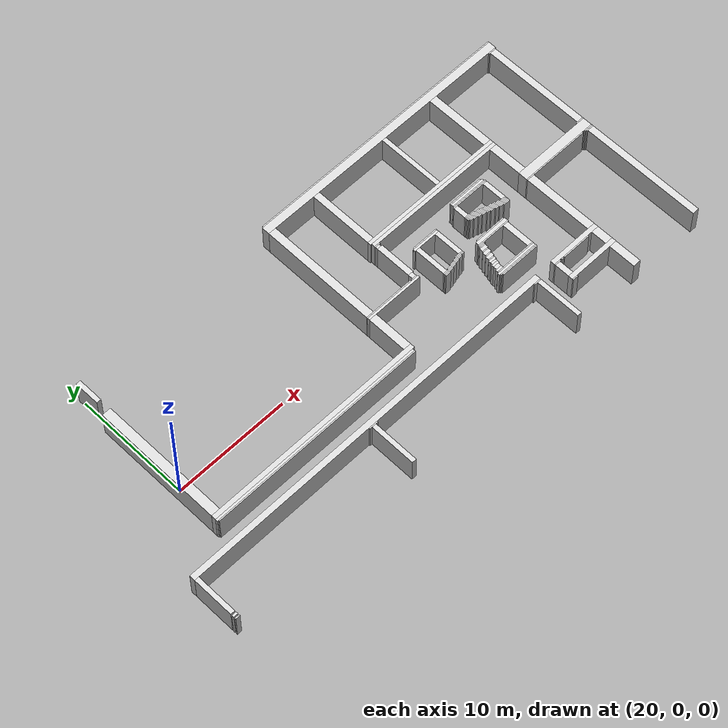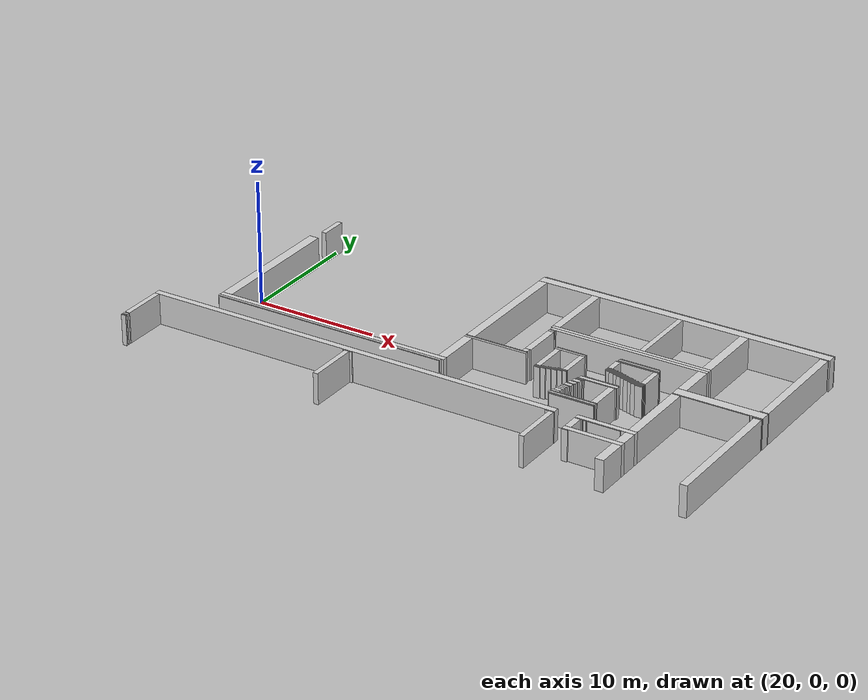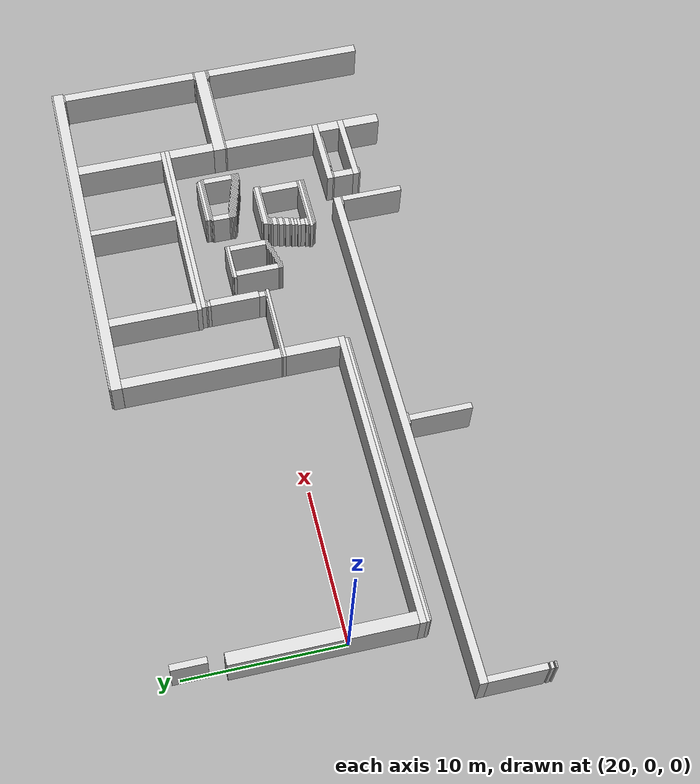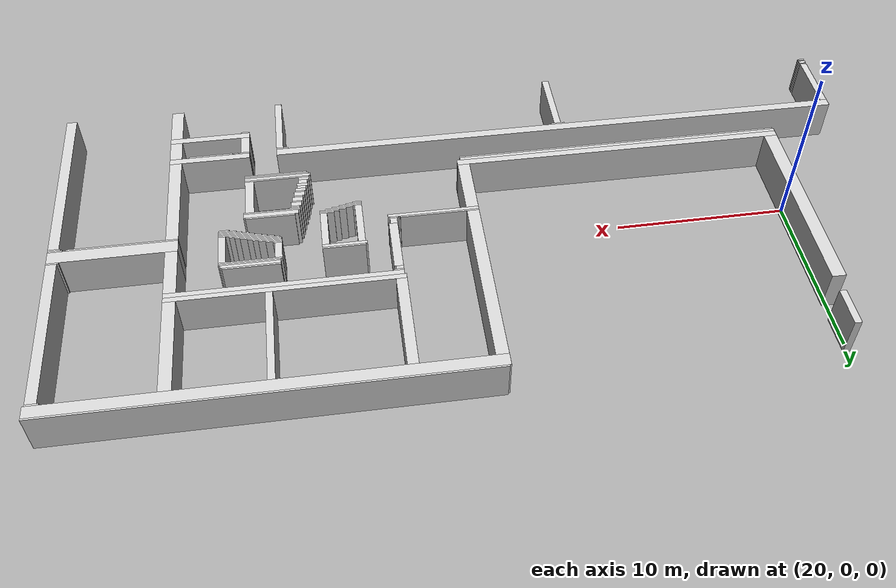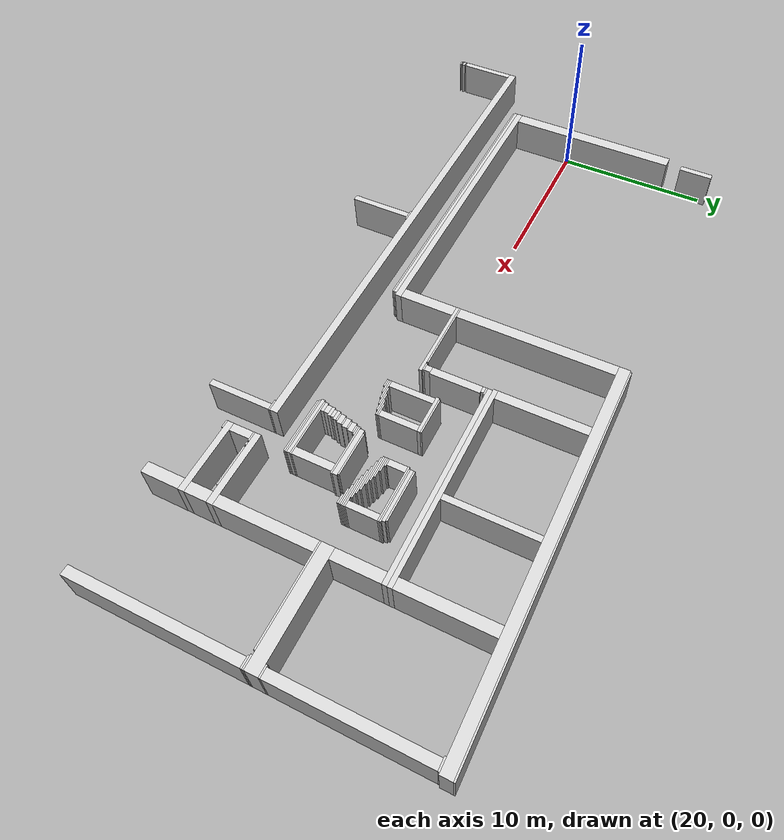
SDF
<sdf version="1.8">
 <model name="campus_first_floor">
  <static>true</static>
  <link name="wall_3">
   <pose>50.45000 10.75000 1.25000 0 0 0</pose>
   <collision name="collision"><geometry><box><size>24.00000 0.10000 2.50000</size></box></geometry></collision>
   <visual name="visual">
    <geometry><box><size>24.00000 0.10000 2.50000</size></box></geometry>
    <material>
     <ambient>0.72 0.72 0.72 1</ambient>
     <diffuse>0.82 0.82 0.82 1</diffuse>
     <specular>0.05 0.05 0.05 1</specular>
    </material>
   </visual>
  </link>
  <link name="wall_8">
   <pose>50.40000 10.35000 1.25000 0 0 0</pose>
   <collision name="collision"><geometry><box><size>24.10000 0.70000 2.50000</size></box></geometry></collision>
   <visual name="visual">
    <geometry><box><size>24.10000 0.70000 2.50000</size></box></geometry>
    <material>
     <ambient>0.72 0.72 0.72 1</ambient>
     <diffuse>0.82 0.82 0.82 1</diffuse>
     <specular>0.05 0.05 0.05 1</specular>
    </material>
   </visual>
  </link>
  <link name="wall_9">
   <pose>62.00000 9.95000 1.25000 0 0 0</pose>
   <collision name="collision"><geometry><box><size>0.70000 0.10000 2.50000</size></box></geometry></collision>
   <visual name="visual">
    <geometry><box><size>0.70000 0.10000 2.50000</size></box></geometry>
    <material>
     <ambient>0.72 0.72 0.72 1</ambient>
     <diffuse>0.82 0.82 0.82 1</diffuse>
     <specular>0.05 0.05 0.05 1</specular>
    </material>
   </visual>
  </link>
  <link name="wall_19">
   <pose>20.05000 9.40000 1.25000 0 0 0</pose>
   <collision name="collision"><geometry><box><size>0.40000 2.20000 2.50000</size></box></geometry></collision>
   <visual name="visual">
    <geometry><box><size>0.40000 2.20000 2.50000</size></box></geometry>
    <material>
     <ambient>0.72 0.72 0.72 1</ambient>
     <diffuse>0.82 0.82 0.82 1</diffuse>
     <specular>0.05 0.05 0.05 1</specular>
    </material>
   </visual>
  </link>
  <link name="wall_59">
   <pose>55.60000 7.15000 1.25000 0 0 0</pose>
   <collision name="collision"><geometry><box><size>0.70000 5.70000 2.50000</size></box></geometry></collision>
   <visual name="visual">
    <geometry><box><size>0.70000 5.70000 2.50000</size></box></geometry>
    <material>
     <ambient>0.72 0.72 0.72 1</ambient>
     <diffuse>0.82 0.82 0.82 1</diffuse>
     <specular>0.05 0.05 0.05 1</specular>
    </material>
   </visual>
  </link>
  <link name="wall_61">
   <pose>50.35000 7.15000 1.25000 0 0 0</pose>
   <collision name="collision"><geometry><box><size>0.40000 5.70000 2.50000</size></box></geometry></collision>
   <visual name="visual">
    <geometry><box><size>0.40000 5.70000 2.50000</size></box></geometry>
    <material>
     <ambient>0.72 0.72 0.72 1</ambient>
     <diffuse>0.82 0.82 0.82 1</diffuse>
     <specular>0.05 0.05 0.05 1</specular>
    </material>
   </visual>
  </link>
  <link name="wall_62">
   <pose>43.25000 7.15000 1.25000 0 0 0</pose>
   <collision name="collision"><geometry><box><size>0.60000 5.70000 2.50000</size></box></geometry></collision>
   <visual name="visual">
    <geometry><box><size>0.60000 5.70000 2.50000</size></box></geometry>
    <material>
     <ambient>0.72 0.72 0.72 1</ambient>
     <diffuse>0.82 0.82 0.82 1</diffuse>
     <specular>0.05 0.05 0.05 1</specular>
    </material>
   </visual>
  </link>
  <link name="wall_69">
   <pose>49.45000 4.15000 1.25000 0 0 0</pose>
   <collision name="collision"><geometry><box><size>13.00000 0.30000 2.50000</size></box></geometry></collision>
   <visual name="visual">
    <geometry><box><size>13.00000 0.30000 2.50000</size></box></geometry>
    <material>
     <ambient>0.72 0.72 0.72 1</ambient>
     <diffuse>0.82 0.82 0.82 1</diffuse>
     <specular>0.05 0.05 0.05 1</specular>
    </material>
   </visual>
  </link>
  <link name="wall_74">
   <pose>49.50000 3.85000 1.25000 0 0 0</pose>
   <collision name="collision"><geometry><box><size>12.90000 0.30000 2.50000</size></box></geometry></collision>
   <visual name="visual">
    <geometry><box><size>12.90000 0.30000 2.50000</size></box></geometry>
    <material>
     <ambient>0.72 0.72 0.72 1</ambient>
     <diffuse>0.82 0.82 0.82 1</diffuse>
     <specular>0.05 0.05 0.05 1</specular>
    </material>
   </visual>
  </link>
  <link name="wall_76">
   <pose>43.30000 3.65000 1.25000 0 0 0</pose>
   <collision name="collision"><geometry><box><size>0.50000 0.10000 2.50000</size></box></geometry></collision>
   <visual name="visual">
    <geometry><box><size>0.50000 0.10000 2.50000</size></box></geometry>
    <material>
     <ambient>0.72 0.72 0.72 1</ambient>
     <diffuse>0.82 0.82 0.82 1</diffuse>
     <specular>0.05 0.05 0.05 1</specular>
    </material>
   </visual>
  </link>
  <link name="wall_79">
   <pose>43.25000 3.50000 1.25000 0 0 0</pose>
   <collision name="collision"><geometry><box><size>0.40000 0.20000 2.50000</size></box></geometry></collision>
   <visual name="visual">
    <geometry><box><size>0.40000 0.20000 2.50000</size></box></geometry>
    <material>
     <ambient>0.72 0.72 0.72 1</ambient>
     <diffuse>0.82 0.82 0.82 1</diffuse>
     <specular>0.05 0.05 0.05 1</specular>
    </material>
   </visual>
  </link>
  <link name="wall_102">
   <pose>51.25000 2.35000 1.25000 0 0 0</pose>
   <collision name="collision"><geometry><box><size>3.20000 0.10000 2.50000</size></box></geometry></collision>
   <visual name="visual">
    <geometry><box><size>3.20000 0.10000 2.50000</size></box></geometry>
    <material>
     <ambient>0.72 0.72 0.72 1</ambient>
     <diffuse>0.82 0.82 0.82 1</diffuse>
     <specular>0.05 0.05 0.05 1</specular>
    </material>
   </visual>
  </link>
  <link name="wall_103">
   <pose>51.30000 2.20000 1.25000 0 0 0</pose>
   <collision name="collision"><geometry><box><size>3.30000 0.20000 2.50000</size></box></geometry></collision>
   <visual name="visual">
    <geometry><box><size>3.30000 0.20000 2.50000</size></box></geometry>
    <material>
     <ambient>0.72 0.72 0.72 1</ambient>
     <diffuse>0.82 0.82 0.82 1</diffuse>
     <specular>0.05 0.05 0.05 1</specular>
    </material>
   </visual>
  </link>
  <link name="wall_108">
   <pose>51.35000 2.05000 1.25000 0 0 0</pose>
   <collision name="collision"><geometry><box><size>3.40000 0.10000 2.50000</size></box></geometry></collision>
   <visual name="visual">
    <geometry><box><size>3.40000 0.10000 2.50000</size></box></geometry>
    <material>
     <ambient>0.72 0.72 0.72 1</ambient>
     <diffuse>0.82 0.82 0.82 1</diffuse>
     <specular>0.05 0.05 0.05 1</specular>
    </material>
   </visual>
  </link>
  <link name="wall_113">
   <pose>51.30000 1.95000 1.25000 0 0 0</pose>
   <collision name="collision"><geometry><box><size>3.50000 0.10000 2.50000</size></box></geometry></collision>
   <visual name="visual">
    <geometry><box><size>3.50000 0.10000 2.50000</size></box></geometry>
    <material>
     <ambient>0.72 0.72 0.72 1</ambient>
     <diffuse>0.82 0.82 0.82 1</diffuse>
     <specular>0.05 0.05 0.05 1</specular>
    </material>
   </visual>
  </link>
  <link name="wall_123">
   <pose>46.15000 1.55000 1.25000 0 0 0</pose>
   <collision name="collision"><geometry><box><size>2.40000 0.10000 2.50000</size></box></geometry></collision>
   <visual name="visual">
    <geometry><box><size>2.40000 0.10000 2.50000</size></box></geometry>
    <material>
     <ambient>0.72 0.72 0.72 1</ambient>
     <diffuse>0.82 0.82 0.82 1</diffuse>
     <specular>0.05 0.05 0.05 1</specular>
    </material>
   </visual>
  </link>
  <link name="wall_128">
   <pose>46.10000 1.40000 1.25000 0 0 0</pose>
   <collision name="collision"><geometry><box><size>2.50000 0.20000 2.50000</size></box></geometry></collision>
   <visual name="visual">
    <geometry><box><size>2.50000 0.20000 2.50000</size></box></geometry>
    <material>
     <ambient>0.72 0.72 0.72 1</ambient>
     <diffuse>0.82 0.82 0.82 1</diffuse>
     <specular>0.05 0.05 0.05 1</specular>
    </material>
   </visual>
  </link>
  <link name="wall_133">
   <pose>62.05000 5.35000 1.25000 0 0 0</pose>
   <collision name="collision"><geometry><box><size>0.60000 9.10000 2.50000</size></box></geometry></collision>
   <visual name="visual">
    <geometry><box><size>0.60000 9.10000 2.50000</size></box></geometry>
    <material>
     <ambient>0.72 0.72 0.72 1</ambient>
     <diffuse>0.82 0.82 0.82 1</diffuse>
     <specular>0.05 0.05 0.05 1</specular>
    </material>
   </visual>
  </link>
  <link name="wall_134">
   <pose>49.75000 1.35000 1.25000 0 0 0</pose>
   <collision name="collision"><geometry><box><size>0.40000 1.10000 2.50000</size></box></geometry></collision>
   <visual name="visual">
    <geometry><box><size>0.40000 1.10000 2.50000</size></box></geometry>
    <material>
     <ambient>0.72 0.72 0.72 1</ambient>
     <diffuse>0.82 0.82 0.82 1</diffuse>
     <specular>0.05 0.05 0.05 1</specular>
    </material>
   </visual>
  </link>
  <link name="wall_135">
   <pose>55.60000 2.20000 1.25000 0 0 0</pose>
   <collision name="collision"><geometry><box><size>0.70000 3.00000 2.50000</size></box></geometry></collision>
   <visual name="visual">
    <geometry><box><size>0.70000 3.00000 2.50000</size></box></geometry>
    <material>
     <ambient>0.72 0.72 0.72 1</ambient>
     <diffuse>0.82 0.82 0.82 1</diffuse>
     <specular>0.05 0.05 0.05 1</specular>
    </material>
   </visual>
  </link>
  <link name="wall_136">
   <pose>62.00000 0.75000 1.25000 0 0 0</pose>
   <collision name="collision"><geometry><box><size>0.70000 0.10000 2.50000</size></box></geometry></collision>
   <visual name="visual">
    <geometry><box><size>0.70000 0.10000 2.50000</size></box></geometry>
    <material>
     <ambient>0.72 0.72 0.72 1</ambient>
     <diffuse>0.82 0.82 0.82 1</diffuse>
     <specular>0.05 0.05 0.05 1</specular>
    </material>
   </visual>
  </link>
  <link name="wall_137">
   <pose>49.80000 0.75000 1.25000 0 0 0</pose>
   <collision name="collision"><geometry><box><size>0.50000 0.10000 2.50000</size></box></geometry></collision>
   <visual name="visual">
    <geometry><box><size>0.50000 0.10000 2.50000</size></box></geometry>
    <material>
     <ambient>0.72 0.72 0.72 1</ambient>
     <diffuse>0.82 0.82 0.82 1</diffuse>
     <specular>0.05 0.05 0.05 1</specular>
    </material>
   </visual>
  </link>
  <link name="wall_138">
   <pose>50.00000 0.65000 1.25000 0 0 0</pose>
   <collision name="collision"><geometry><box><size>0.90000 0.10000 2.50000</size></box></geometry></collision>
   <visual name="visual">
    <geometry><box><size>0.90000 0.10000 2.50000</size></box></geometry>
    <material>
     <ambient>0.72 0.72 0.72 1</ambient>
     <diffuse>0.82 0.82 0.82 1</diffuse>
     <specular>0.05 0.05 0.05 1</specular>
    </material>
   </visual>
  </link>
  <link name="wall_139">
   <pose>50.20000 0.55000 1.25000 0 0 0</pose>
   <collision name="collision"><geometry><box><size>1.30000 0.10000 2.50000</size></box></geometry></collision>
   <visual name="visual">
    <geometry><box><size>1.30000 0.10000 2.50000</size></box></geometry>
    <material>
     <ambient>0.72 0.72 0.72 1</ambient>
     <diffuse>0.82 0.82 0.82 1</diffuse>
     <specular>0.05 0.05 0.05 1</specular>
    </material>
   </visual>
  </link>
  <link name="wall_140">
   <pose>50.35000 0.45000 1.25000 0 0 0</pose>
   <collision name="collision"><geometry><box><size>1.60000 0.10000 2.50000</size></box></geometry></collision>
   <visual name="visual">
    <geometry><box><size>1.60000 0.10000 2.50000</size></box></geometry>
    <material>
     <ambient>0.72 0.72 0.72 1</ambient>
     <diffuse>0.82 0.82 0.82 1</diffuse>
     <specular>0.05 0.05 0.05 1</specular>
    </material>
   </visual>
  </link>
  <link name="wall_141">
   <pose>50.55000 0.35000 1.25000 0 0 0</pose>
   <collision name="collision"><geometry><box><size>1.80000 0.10000 2.50000</size></box></geometry></collision>
   <visual name="visual">
    <geometry><box><size>1.80000 0.10000 2.50000</size></box></geometry>
    <material>
     <ambient>0.72 0.72 0.72 1</ambient>
     <diffuse>0.82 0.82 0.82 1</diffuse>
     <specular>0.05 0.05 0.05 1</specular>
    </material>
   </visual>
  </link>
  <link name="wall_143">
   <pose>43.30000 1.80000 1.25000 0 0 0</pose>
   <collision name="collision"><geometry><box><size>0.50000 3.20000 2.50000</size></box></geometry></collision>
   <visual name="visual">
    <geometry><box><size>0.50000 3.20000 2.50000</size></box></geometry>
    <material>
     <ambient>0.72 0.72 0.72 1</ambient>
     <diffuse>0.82 0.82 0.82 1</diffuse>
     <specular>0.05 0.05 0.05 1</specular>
    </material>
   </visual>
  </link>
  <link name="wall_146">
   <pose>50.90000 0.25000 1.25000 0 0 0</pose>
   <collision name="collision"><geometry><box><size>1.90000 0.10000 2.50000</size></box></geometry></collision>
   <visual name="visual">
    <geometry><box><size>1.90000 0.10000 2.50000</size></box></geometry>
    <material>
     <ambient>0.72 0.72 0.72 1</ambient>
     <diffuse>0.82 0.82 0.82 1</diffuse>
     <specular>0.05 0.05 0.05 1</specular>
    </material>
   </visual>
  </link>
  <link name="wall_148">
   <pose>51.25000 0.15000 1.25000 0 0 0</pose>
   <collision name="collision"><geometry><box><size>1.80000 0.10000 2.50000</size></box></geometry></collision>
   <visual name="visual">
    <geometry><box><size>1.80000 0.10000 2.50000</size></box></geometry>
    <material>
     <ambient>0.72 0.72 0.72 1</ambient>
     <diffuse>0.82 0.82 0.82 1</diffuse>
     <specular>0.05 0.05 0.05 1</specular>
    </material>
   </visual>
  </link>
  <link name="wall_150">
   <pose>51.55000 0.05000 1.25000 0 0 0</pose>
   <collision name="collision"><geometry><box><size>1.80000 0.10000 2.50000</size></box></geometry></collision>
   <visual name="visual">
    <geometry><box><size>1.80000 0.10000 2.50000</size></box></geometry>
    <material>
     <ambient>0.72 0.72 0.72 1</ambient>
     <diffuse>0.82 0.82 0.82 1</diffuse>
     <specular>0.05 0.05 0.05 1</specular>
    </material>
   </visual>
  </link>
  <link name="wall_151">
   <pose>52.85000 0.95000 1.25000 0 0 0</pose>
   <collision name="collision"><geometry><box><size>0.40000 1.90000 2.50000</size></box></geometry></collision>
   <visual name="visual">
    <geometry><box><size>0.40000 1.90000 2.50000</size></box></geometry>
    <material>
     <ambient>0.72 0.72 0.72 1</ambient>
     <diffuse>0.82 0.82 0.82 1</diffuse>
     <specular>0.05 0.05 0.05 1</specular>
    </material>
   </visual>
  </link>
  <link name="wall_155">
   <pose>52.05000 -0.05000 1.25000 0 0 0</pose>
   <collision name="collision"><geometry><box><size>2.00000 0.10000 2.50000</size></box></geometry></collision>
   <visual name="visual">
    <geometry><box><size>2.00000 0.10000 2.50000</size></box></geometry>
    <material>
     <ambient>0.72 0.72 0.72 1</ambient>
     <diffuse>0.82 0.82 0.82 1</diffuse>
     <specular>0.05 0.05 0.05 1</specular>
    </material>
   </visual>
  </link>
  <link name="wall_159">
   <pose>58.80000 0.30000 1.25000 0 0 0</pose>
   <collision name="collision"><geometry><box><size>7.10000 0.80000 2.50000</size></box></geometry></collision>
   <visual name="visual">
    <geometry><box><size>7.10000 0.80000 2.50000</size></box></geometry>
    <material>
     <ambient>0.72 0.72 0.72 1</ambient>
     <diffuse>0.82 0.82 0.82 1</diffuse>
     <specular>0.05 0.05 0.05 1</specular>
    </material>
   </visual>
  </link>
  <link name="wall_163">
   <pose>38.70000 4.90000 1.25000 0 0 0</pose>
   <collision name="collision"><geometry><box><size>0.70000 10.20000 2.50000</size></box></geometry></collision>
   <visual name="visual">
    <geometry><box><size>0.70000 10.20000 2.50000</size></box></geometry>
    <material>
     <ambient>0.72 0.72 0.72 1</ambient>
     <diffuse>0.82 0.82 0.82 1</diffuse>
     <specular>0.05 0.05 0.05 1</specular>
    </material>
   </visual>
  </link>
  <link name="wall_164">
   <pose>43.25000 0.00000 1.25000 0 0 0</pose>
   <collision name="collision"><geometry><box><size>0.40000 0.40000 2.50000</size></box></geometry></collision>
   <visual name="visual">
    <geometry><box><size>0.40000 0.40000 2.50000</size></box></geometry>
    <material>
     <ambient>0.72 0.72 0.72 1</ambient>
     <diffuse>0.82 0.82 0.82 1</diffuse>
     <specular>0.05 0.05 0.05 1</specular>
    </material>
   </visual>
  </link>
  <link name="wall_166">
   <pose>52.20000 -0.15000 1.25000 0 0 0</pose>
   <collision name="collision"><geometry><box><size>1.70000 0.10000 2.50000</size></box></geometry></collision>
   <visual name="visual">
    <geometry><box><size>1.70000 0.10000 2.50000</size></box></geometry>
    <material>
     <ambient>0.72 0.72 0.72 1</ambient>
     <diffuse>0.82 0.82 0.82 1</diffuse>
     <specular>0.05 0.05 0.05 1</specular>
    </material>
   </visual>
  </link>
  <link name="wall_167">
   <pose>61.95000 -0.15000 1.25000 0 0 0</pose>
   <collision name="collision"><geometry><box><size>0.80000 0.10000 2.50000</size></box></geometry></collision>
   <visual name="visual">
    <geometry><box><size>0.80000 0.10000 2.50000</size></box></geometry>
    <material>
     <ambient>0.72 0.72 0.72 1</ambient>
     <diffuse>0.82 0.82 0.82 1</diffuse>
     <specular>0.05 0.05 0.05 1</specular>
    </material>
   </visual>
  </link>
  <link name="wall_170">
   <pose>58.30000 -0.15000 1.25000 0 0 0</pose>
   <collision name="collision"><geometry><box><size>6.10000 0.10000 2.50000</size></box></geometry></collision>
   <visual name="visual">
    <geometry><box><size>6.10000 0.10000 2.50000</size></box></geometry>
    <material>
     <ambient>0.72 0.72 0.72 1</ambient>
     <diffuse>0.82 0.82 0.82 1</diffuse>
     <specular>0.05 0.05 0.05 1</specular>
    </material>
   </visual>
  </link>
  <link name="wall_172">
   <pose>62.00000 -0.25000 1.25000 0 0 0</pose>
   <collision name="collision"><geometry><box><size>0.70000 0.10000 2.50000</size></box></geometry></collision>
   <visual name="visual">
    <geometry><box><size>0.70000 0.10000 2.50000</size></box></geometry>
    <material>
     <ambient>0.72 0.72 0.72 1</ambient>
     <diffuse>0.82 0.82 0.82 1</diffuse>
     <specular>0.05 0.05 0.05 1</specular>
    </material>
   </visual>
  </link>
  <link name="wall_173">
   <pose>40.60000 -0.25000 1.25000 0 0 0</pose>
   <collision name="collision"><geometry><box><size>4.50000 0.10000 2.50000</size></box></geometry></collision>
   <visual name="visual">
    <geometry><box><size>4.50000 0.10000 2.50000</size></box></geometry>
    <material>
     <ambient>0.72 0.72 0.72 1</ambient>
     <diffuse>0.82 0.82 0.82 1</diffuse>
     <specular>0.05 0.05 0.05 1</specular>
    </material>
   </visual>
  </link>
  <link name="wall_174">
   <pose>43.20000 -0.25000 1.25000 0 0 0</pose>
   <collision name="collision"><geometry><box><size>0.50000 0.10000 2.50000</size></box></geometry></collision>
   <visual name="visual">
    <geometry><box><size>0.50000 0.10000 2.50000</size></box></geometry>
    <material>
     <ambient>0.72 0.72 0.72 1</ambient>
     <diffuse>0.82 0.82 0.82 1</diffuse>
     <specular>0.05 0.05 0.05 1</specular>
    </material>
   </visual>
  </link>
  <link name="wall_175">
   <pose>52.40000 -0.25000 1.25000 0 0 0</pose>
   <collision name="collision"><geometry><box><size>1.30000 0.10000 2.50000</size></box></geometry></collision>
   <visual name="visual">
    <geometry><box><size>1.30000 0.10000 2.50000</size></box></geometry>
    <material>
     <ambient>0.72 0.72 0.72 1</ambient>
     <diffuse>0.82 0.82 0.82 1</diffuse>
     <specular>0.05 0.05 0.05 1</specular>
    </material>
   </visual>
  </link>
  <link name="wall_177">
   <pose>52.55000 -0.35000 1.25000 0 0 0</pose>
   <collision name="collision"><geometry><box><size>1.00000 0.10000 2.50000</size></box></geometry></collision>
   <visual name="visual">
    <geometry><box><size>1.00000 0.10000 2.50000</size></box></geometry>
    <material>
     <ambient>0.72 0.72 0.72 1</ambient>
     <diffuse>0.82 0.82 0.82 1</diffuse>
     <specular>0.05 0.05 0.05 1</specular>
    </material>
   </visual>
  </link>
  <link name="wall_186">
   <pose>40.95000 -0.40000 1.25000 0 0 0</pose>
   <collision name="collision"><geometry><box><size>5.20000 0.20000 2.50000</size></box></geometry></collision>
   <visual name="visual">
    <geometry><box><size>5.20000 0.20000 2.50000</size></box></geometry>
    <material>
     <ambient>0.72 0.72 0.72 1</ambient>
     <diffuse>0.82 0.82 0.82 1</diffuse>
     <specular>0.05 0.05 0.05 1</specular>
    </material>
   </visual>
  </link>
  <link name="wall_190">
   <pose>52.75000 -0.45000 1.25000 0 0 0</pose>
   <collision name="collision"><geometry><box><size>0.60000 0.10000 2.50000</size></box></geometry></collision>
   <visual name="visual">
    <geometry><box><size>0.60000 0.10000 2.50000</size></box></geometry>
    <material>
     <ambient>0.72 0.72 0.72 1</ambient>
     <diffuse>0.82 0.82 0.82 1</diffuse>
     <specular>0.05 0.05 0.05 1</specular>
    </material>
   </visual>
  </link>
  <link name="wall_206">
   <pose>47.15000 0.10000 1.25000 0 0 0</pose>
   <collision name="collision"><geometry><box><size>0.40000 2.40000 2.50000</size></box></geometry></collision>
   <visual name="visual">
    <geometry><box><size>0.40000 2.40000 2.50000</size></box></geometry>
    <material>
     <ambient>0.72 0.72 0.72 1</ambient>
     <diffuse>0.82 0.82 0.82 1</diffuse>
     <specular>0.05 0.05 0.05 1</specular>
    </material>
   </visual>
  </link>
  <link name="wall_212">
   <pose>46.95000 -1.15000 1.25000 0 0 0</pose>
   <collision name="collision"><geometry><box><size>0.80000 0.10000 2.50000</size></box></geometry></collision>
   <visual name="visual">
    <geometry><box><size>0.80000 0.10000 2.50000</size></box></geometry>
    <material>
     <ambient>0.72 0.72 0.72 1</ambient>
     <diffuse>0.82 0.82 0.82 1</diffuse>
     <specular>0.05 0.05 0.05 1</specular>
    </material>
   </visual>
  </link>
  <link name="wall_214">
   <pose>50.15000 -1.25000 1.25000 0 0 0</pose>
   <collision name="collision"><geometry><box><size>2.80000 0.10000 2.50000</size></box></geometry></collision>
   <visual name="visual">
    <geometry><box><size>2.80000 0.10000 2.50000</size></box></geometry>
    <material>
     <ambient>0.72 0.72 0.72 1</ambient>
     <diffuse>0.82 0.82 0.82 1</diffuse>
     <specular>0.05 0.05 0.05 1</specular>
    </material>
   </visual>
  </link>
  <link name="wall_215">
   <pose>46.80000 -1.25000 1.25000 0 0 0</pose>
   <collision name="collision"><geometry><box><size>1.10000 0.10000 2.50000</size></box></geometry></collision>
   <visual name="visual">
    <geometry><box><size>1.10000 0.10000 2.50000</size></box></geometry>
    <material>
     <ambient>0.72 0.72 0.72 1</ambient>
     <diffuse>0.82 0.82 0.82 1</diffuse>
     <specular>0.05 0.05 0.05 1</specular>
    </material>
   </visual>
  </link>
  <link name="wall_218">
   <pose>46.45000 -1.35000 1.25000 0 0 0</pose>
   <collision name="collision"><geometry><box><size>1.20000 0.10000 2.50000</size></box></geometry></collision>
   <visual name="visual">
    <geometry><box><size>1.20000 0.10000 2.50000</size></box></geometry>
    <material>
     <ambient>0.72 0.72 0.72 1</ambient>
     <diffuse>0.82 0.82 0.82 1</diffuse>
     <specular>0.05 0.05 0.05 1</specular>
    </material>
   </visual>
  </link>
  <link name="wall_219">
   <pose>45.15000 -0.10000 1.25000 0 0 0</pose>
   <collision name="collision"><geometry><box><size>0.40000 2.80000 2.50000</size></box></geometry></collision>
   <visual name="visual">
    <geometry><box><size>0.40000 2.80000 2.50000</size></box></geometry>
    <material>
     <ambient>0.72 0.72 0.72 1</ambient>
     <diffuse>0.82 0.82 0.82 1</diffuse>
     <specular>0.05 0.05 0.05 1</specular>
    </material>
   </visual>
  </link>
  <link name="wall_220">
   <pose>46.05000 -1.45000 1.25000 0 0 0</pose>
   <collision name="collision"><geometry><box><size>1.20000 0.10000 2.50000</size></box></geometry></collision>
   <visual name="visual">
    <geometry><box><size>1.20000 0.10000 2.50000</size></box></geometry>
    <material>
     <ambient>0.72 0.72 0.72 1</ambient>
     <diffuse>0.82 0.82 0.82 1</diffuse>
     <specular>0.05 0.05 0.05 1</specular>
    </material>
   </visual>
  </link>
  <link name="wall_223">
   <pose>45.60000 -1.55000 1.25000 0 0 0</pose>
   <collision name="collision"><geometry><box><size>1.30000 0.10000 2.50000</size></box></geometry></collision>
   <visual name="visual">
    <geometry><box><size>1.30000 0.10000 2.50000</size></box></geometry>
    <material>
     <ambient>0.72 0.72 0.72 1</ambient>
     <diffuse>0.82 0.82 0.82 1</diffuse>
     <specular>0.05 0.05 0.05 1</specular>
    </material>
   </visual>
  </link>
  <link name="wall_224">
   <pose>50.10000 -1.45000 1.25000 0 0 0</pose>
   <collision name="collision"><geometry><box><size>3.10000 0.30000 2.50000</size></box></geometry></collision>
   <visual name="visual">
    <geometry><box><size>3.10000 0.30000 2.50000</size></box></geometry>
    <material>
     <ambient>0.72 0.72 0.72 1</ambient>
     <diffuse>0.82 0.82 0.82 1</diffuse>
     <specular>0.05 0.05 0.05 1</specular>
    </material>
   </visual>
  </link>
  <link name="wall_227">
   <pose>45.40000 -1.65000 1.25000 0 0 0</pose>
   <collision name="collision"><geometry><box><size>0.90000 0.10000 2.50000</size></box></geometry></collision>
   <visual name="visual">
    <geometry><box><size>0.90000 0.10000 2.50000</size></box></geometry>
    <material>
     <ambient>0.72 0.72 0.72 1</ambient>
     <diffuse>0.82 0.82 0.82 1</diffuse>
     <specular>0.05 0.05 0.05 1</specular>
    </material>
   </visual>
  </link>
  <link name="wall_228">
   <pose>50.05000 -1.65000 1.25000 0 0 0</pose>
   <collision name="collision"><geometry><box><size>3.20000 0.10000 2.50000</size></box></geometry></collision>
   <visual name="visual">
    <geometry><box><size>3.20000 0.10000 2.50000</size></box></geometry>
    <material>
     <ambient>0.72 0.72 0.72 1</ambient>
     <diffuse>0.82 0.82 0.82 1</diffuse>
     <specular>0.05 0.05 0.05 1</specular>
    </material>
   </visual>
  </link>
  <link name="wall_229">
   <pose>45.20000 -1.75000 1.25000 0 0 0</pose>
   <collision name="collision"><geometry><box><size>0.50000 0.10000 2.50000</size></box></geometry></collision>
   <visual name="visual">
    <geometry><box><size>0.50000 0.10000 2.50000</size></box></geometry>
    <material>
     <ambient>0.72 0.72 0.72 1</ambient>
     <diffuse>0.82 0.82 0.82 1</diffuse>
     <specular>0.05 0.05 0.05 1</specular>
    </material>
   </visual>
  </link>
  <link name="wall_231">
   <pose>48.75000 -1.75000 1.25000 0 0 0</pose>
   <collision name="collision"><geometry><box><size>0.60000 0.10000 2.50000</size></box></geometry></collision>
   <visual name="visual">
    <geometry><box><size>0.60000 0.10000 2.50000</size></box></geometry>
    <material>
     <ambient>0.72 0.72 0.72 1</ambient>
     <diffuse>0.82 0.82 0.82 1</diffuse>
     <specular>0.05 0.05 0.05 1</specular>
    </material>
   </visual>
  </link>
  <link name="wall_232">
   <pose>48.70000 -1.85000 1.25000 0 0 0</pose>
   <collision name="collision"><geometry><box><size>0.50000 0.10000 2.50000</size></box></geometry></collision>
   <visual name="visual">
    <geometry><box><size>0.50000 0.10000 2.50000</size></box></geometry>
    <material>
     <ambient>0.72 0.72 0.72 1</ambient>
     <diffuse>0.82 0.82 0.82 1</diffuse>
     <specular>0.05 0.05 0.05 1</specular>
    </material>
   </visual>
  </link>
  <link name="wall_236">
   <pose>48.65000 -2.05000 1.25000 0 0 0</pose>
   <collision name="collision"><geometry><box><size>0.60000 0.30000 2.50000</size></box></geometry></collision>
   <visual name="visual">
    <geometry><box><size>0.60000 0.30000 2.50000</size></box></geometry>
    <material>
     <ambient>0.72 0.72 0.72 1</ambient>
     <diffuse>0.82 0.82 0.82 1</diffuse>
     <specular>0.05 0.05 0.05 1</specular>
    </material>
   </visual>
  </link>
  <link name="wall_237">
   <pose>48.60000 -2.25000 1.25000 0 0 0</pose>
   <collision name="collision"><geometry><box><size>0.50000 0.10000 2.50000</size></box></geometry></collision>
   <visual name="visual">
    <geometry><box><size>0.50000 0.10000 2.50000</size></box></geometry>
    <material>
     <ambient>0.72 0.72 0.72 1</ambient>
     <diffuse>0.82 0.82 0.82 1</diffuse>
     <specular>0.05 0.05 0.05 1</specular>
    </material>
   </visual>
  </link>
  <link name="wall_241">
   <pose>48.55000 -2.45000 1.25000 0 0 0</pose>
   <collision name="collision"><geometry><box><size>0.60000 0.30000 2.50000</size></box></geometry></collision>
   <visual name="visual">
    <geometry><box><size>0.60000 0.30000 2.50000</size></box></geometry>
    <material>
     <ambient>0.72 0.72 0.72 1</ambient>
     <diffuse>0.82 0.82 0.82 1</diffuse>
     <specular>0.05 0.05 0.05 1</specular>
    </material>
   </visual>
  </link>
  <link name="wall_243">
   <pose>48.50000 -2.65000 1.25000 0 0 0</pose>
   <collision name="collision"><geometry><box><size>0.50000 0.10000 2.50000</size></box></geometry></collision>
   <visual name="visual">
    <geometry><box><size>0.50000 0.10000 2.50000</size></box></geometry>
    <material>
     <ambient>0.72 0.72 0.72 1</ambient>
     <diffuse>0.82 0.82 0.82 1</diffuse>
     <specular>0.05 0.05 0.05 1</specular>
    </material>
   </visual>
  </link>
  <link name="wall_251">
   <pose>48.45000 -2.85000 1.25000 0 0 0</pose>
   <collision name="collision"><geometry><box><size>0.60000 0.30000 2.50000</size></box></geometry></collision>
   <visual name="visual">
    <geometry><box><size>0.60000 0.30000 2.50000</size></box></geometry>
    <material>
     <ambient>0.72 0.72 0.72 1</ambient>
     <diffuse>0.82 0.82 0.82 1</diffuse>
     <specular>0.05 0.05 0.05 1</specular>
    </material>
   </visual>
  </link>
  <link name="wall_254">
   <pose>48.40000 -3.05000 1.25000 0 0 0</pose>
   <collision name="collision"><geometry><box><size>0.50000 0.10000 2.50000</size></box></geometry></collision>
   <visual name="visual">
    <geometry><box><size>0.50000 0.10000 2.50000</size></box></geometry>
    <material>
     <ambient>0.72 0.72 0.72 1</ambient>
     <diffuse>0.82 0.82 0.82 1</diffuse>
     <specular>0.05 0.05 0.05 1</specular>
    </material>
   </visual>
  </link>
  <link name="wall_261">
   <pose>48.35000 -3.20000 1.25000 0 0 0</pose>
   <collision name="collision"><geometry><box><size>0.60000 0.20000 2.50000</size></box></geometry></collision>
   <visual name="visual">
    <geometry><box><size>0.60000 0.20000 2.50000</size></box></geometry>
    <material>
     <ambient>0.72 0.72 0.72 1</ambient>
     <diffuse>0.82 0.82 0.82 1</diffuse>
     <specular>0.05 0.05 0.05 1</specular>
    </material>
   </visual>
  </link>
  <link name="wall_264">
   <pose>48.30000 -3.40000 1.25000 0 0 0</pose>
   <collision name="collision"><geometry><box><size>0.50000 0.20000 2.50000</size></box></geometry></collision>
   <visual name="visual">
    <geometry><box><size>0.50000 0.20000 2.50000</size></box></geometry>
    <material>
     <ambient>0.72 0.72 0.72 1</ambient>
     <diffuse>0.82 0.82 0.82 1</diffuse>
     <specular>0.05 0.05 0.05 1</specular>
    </material>
   </visual>
  </link>
  <link name="wall_266">
   <pose>48.25000 -3.60000 1.25000 0 0 0</pose>
   <collision name="collision"><geometry><box><size>0.60000 0.20000 2.50000</size></box></geometry></collision>
   <visual name="visual">
    <geometry><box><size>0.60000 0.20000 2.50000</size></box></geometry>
    <material>
     <ambient>0.72 0.72 0.72 1</ambient>
     <diffuse>0.82 0.82 0.82 1</diffuse>
     <specular>0.05 0.05 0.05 1</specular>
    </material>
   </visual>
  </link>
  <link name="wall_268">
   <pose>38.70000 -2.25000 1.25000 0 0 0</pose>
   <collision name="collision"><geometry><box><size>0.70000 3.50000 2.50000</size></box></geometry></collision>
   <visual name="visual">
    <geometry><box><size>0.70000 3.50000 2.50000</size></box></geometry>
    <material>
     <ambient>0.72 0.72 0.72 1</ambient>
     <diffuse>0.82 0.82 0.82 1</diffuse>
     <specular>0.05 0.05 0.05 1</specular>
    </material>
   </visual>
  </link>
  <link name="wall_270">
   <pose>19.85000 1.65000 1.25000 0 0 0</pose>
   <collision name="collision"><geometry><box><size>0.80000 11.30000 2.50000</size></box></geometry></collision>
   <visual name="visual">
    <geometry><box><size>0.80000 11.30000 2.50000</size></box></geometry>
    <material>
     <ambient>0.72 0.72 0.72 1</ambient>
     <diffuse>0.82 0.82 0.82 1</diffuse>
     <specular>0.05 0.05 0.05 1</specular>
    </material>
   </visual>
  </link>
  <link name="wall_274">
   <pose>48.20000 -3.85000 1.25000 0 0 0</pose>
   <collision name="collision"><geometry><box><size>0.50000 0.30000 2.50000</size></box></geometry></collision>
   <visual name="visual">
    <geometry><box><size>0.50000 0.30000 2.50000</size></box></geometry>
    <material>
     <ambient>0.72 0.72 0.72 1</ambient>
     <diffuse>0.82 0.82 0.82 1</diffuse>
     <specular>0.05 0.05 0.05 1</specular>
    </material>
   </visual>
  </link>
  <link name="wall_283">
   <pose>48.15000 -4.10000 1.25000 0 0 0</pose>
   <collision name="collision"><geometry><box><size>0.60000 0.20000 2.50000</size></box></geometry></collision>
   <visual name="visual">
    <geometry><box><size>0.60000 0.20000 2.50000</size></box></geometry>
    <material>
     <ambient>0.72 0.72 0.72 1</ambient>
     <diffuse>0.82 0.82 0.82 1</diffuse>
     <specular>0.05 0.05 0.05 1</specular>
    </material>
   </visual>
  </link>
  <link name="wall_286">
   <pose>51.30000 -2.95000 1.25000 0 0 0</pose>
   <collision name="collision"><geometry><box><size>0.50000 2.50000 2.50000</size></box></geometry></collision>
   <visual name="visual">
    <geometry><box><size>0.50000 2.50000 2.50000</size></box></geometry>
    <material>
     <ambient>0.72 0.72 0.72 1</ambient>
     <diffuse>0.82 0.82 0.82 1</diffuse>
     <specular>0.05 0.05 0.05 1</specular>
    </material>
   </visual>
  </link>
  <link name="wall_287">
   <pose>49.70000 -4.25000 1.25000 0 0 0</pose>
   <collision name="collision"><geometry><box><size>3.70000 0.10000 2.50000</size></box></geometry></collision>
   <visual name="visual">
    <geometry><box><size>3.70000 0.10000 2.50000</size></box></geometry>
    <material>
     <ambient>0.72 0.72 0.72 1</ambient>
     <diffuse>0.82 0.82 0.82 1</diffuse>
     <specular>0.05 0.05 0.05 1</specular>
    </material>
   </visual>
  </link>
  <link name="wall_296">
   <pose>29.25000 -4.20000 1.25000 0 0 0</pose>
   <collision name="collision"><geometry><box><size>19.60000 0.40000 2.50000</size></box></geometry></collision>
   <visual name="visual">
    <geometry><box><size>19.60000 0.40000 2.50000</size></box></geometry>
    <material>
     <ambient>0.72 0.72 0.72 1</ambient>
     <diffuse>0.82 0.82 0.82 1</diffuse>
     <specular>0.05 0.05 0.05 1</specular>
    </material>
   </visual>
  </link>
  <link name="wall_301">
   <pose>49.65000 -4.40000 1.25000 0 0 0</pose>
   <collision name="collision"><geometry><box><size>3.80000 0.20000 2.50000</size></box></geometry></collision>
   <visual name="visual">
    <geometry><box><size>3.80000 0.20000 2.50000</size></box></geometry>
    <material>
     <ambient>0.72 0.72 0.72 1</ambient>
     <diffuse>0.82 0.82 0.82 1</diffuse>
     <specular>0.05 0.05 0.05 1</specular>
    </material>
   </visual>
  </link>
  <link name="wall_303">
   <pose>29.15000 -4.50000 1.25000 0 0 0</pose>
   <collision name="collision"><geometry><box><size>19.40000 0.20000 2.50000</size></box></geometry></collision>
   <visual name="visual">
    <geometry><box><size>19.40000 0.20000 2.50000</size></box></geometry>
    <material>
     <ambient>0.72 0.72 0.72 1</ambient>
     <diffuse>0.82 0.82 0.82 1</diffuse>
     <specular>0.05 0.05 0.05 1</specular>
    </material>
   </visual>
  </link>
  <link name="wall_304">
   <pose>49.70000 -4.55000 1.25000 0 0 0</pose>
   <collision name="collision"><geometry><box><size>3.70000 0.10000 2.50000</size></box></geometry></collision>
   <visual name="visual">
    <geometry><box><size>3.70000 0.10000 2.50000</size></box></geometry>
    <material>
     <ambient>0.72 0.72 0.72 1</ambient>
     <diffuse>0.82 0.82 0.82 1</diffuse>
     <specular>0.05 0.05 0.05 1</specular>
    </material>
   </visual>
  </link>
  <link name="wall_307">
   <pose>49.75000 -4.65000 1.25000 0 0 0</pose>
   <collision name="collision"><geometry><box><size>3.60000 0.10000 2.50000</size></box></geometry></collision>
   <visual name="visual">
    <geometry><box><size>3.60000 0.10000 2.50000</size></box></geometry>
    <material>
     <ambient>0.72 0.72 0.72 1</ambient>
     <diffuse>0.82 0.82 0.82 1</diffuse>
     <specular>0.05 0.05 0.05 1</specular>
    </material>
   </visual>
  </link>
  <link name="wall_309">
   <pose>29.20000 -4.65000 1.25000 0 0 0</pose>
   <collision name="collision"><geometry><box><size>19.30000 0.10000 2.50000</size></box></geometry></collision>
   <visual name="visual">
    <geometry><box><size>19.30000 0.10000 2.50000</size></box></geometry>
    <material>
     <ambient>0.72 0.72 0.72 1</ambient>
     <diffuse>0.82 0.82 0.82 1</diffuse>
     <specular>0.05 0.05 0.05 1</specular>
    </material>
   </visual>
  </link>
  <link name="wall_319">
   <pose>55.60000 -3.25000 1.25000 0 0 0</pose>
   <collision name="collision"><geometry><box><size>0.70000 6.10000 2.50000</size></box></geometry></collision>
   <visual name="visual">
    <geometry><box><size>0.70000 6.10000 2.50000</size></box></geometry>
    <material>
     <ambient>0.72 0.72 0.72 1</ambient>
     <diffuse>0.82 0.82 0.82 1</diffuse>
     <specular>0.05 0.05 0.05 1</specular>
    </material>
   </visual>
  </link>
  <link name="wall_329">
   <pose>53.60000 -6.50000 1.25000 0 0 0</pose>
   <collision name="collision"><geometry><box><size>4.70000 0.40000 2.50000</size></box></geometry></collision>
   <visual name="visual">
    <geometry><box><size>4.70000 0.40000 2.50000</size></box></geometry>
    <material>
     <ambient>0.72 0.72 0.72 1</ambient>
     <diffuse>0.82 0.82 0.82 1</diffuse>
     <specular>0.05 0.05 0.05 1</specular>
    </material>
   </visual>
  </link>
  <link name="wall_331">
   <pose>32.45000 -6.55000 1.25000 0 0 0</pose>
   <collision name="collision"><geometry><box><size>34.40000 0.50000 2.50000</size></box></geometry></collision>
   <visual name="visual">
    <geometry><box><size>34.40000 0.50000 2.50000</size></box></geometry>
    <material>
     <ambient>0.72 0.72 0.72 1</ambient>
     <diffuse>0.82 0.82 0.82 1</diffuse>
     <specular>0.05 0.05 0.05 1</specular>
    </material>
   </visual>
  </link>
  <link name="wall_333">
   <pose>52.05000 -6.75000 1.25000 0 0 0</pose>
   <collision name="collision"><geometry><box><size>0.20000 0.10000 2.50000</size></box></geometry></collision>
   <visual name="visual">
    <geometry><box><size>0.20000 0.10000 2.50000</size></box></geometry>
    <material>
     <ambient>0.72 0.72 0.72 1</ambient>
     <diffuse>0.82 0.82 0.82 1</diffuse>
     <specular>0.05 0.05 0.05 1</specular>
    </material>
   </visual>
  </link>
  <link name="wall_337">
   <pose>51.55000 -6.75000 1.25000 0 0 0</pose>
   <collision name="collision"><geometry><box><size>0.60000 0.10000 2.50000</size></box></geometry></collision>
   <visual name="visual">
    <geometry><box><size>0.60000 0.10000 2.50000</size></box></geometry>
    <material>
     <ambient>0.72 0.72 0.72 1</ambient>
     <diffuse>0.82 0.82 0.82 1</diffuse>
     <specular>0.05 0.05 0.05 1</specular>
    </material>
   </visual>
  </link>
  <link name="wall_338">
   <pose>53.55000 -6.75000 1.25000 0 0 0</pose>
   <collision name="collision"><geometry><box><size>2.60000 0.10000 2.50000</size></box></geometry></collision>
   <visual name="visual">
    <geometry><box><size>2.60000 0.10000 2.50000</size></box></geometry>
    <material>
     <ambient>0.72 0.72 0.72 1</ambient>
     <diffuse>0.82 0.82 0.82 1</diffuse>
     <specular>0.05 0.05 0.05 1</specular>
    </material>
   </visual>
  </link>
  <link name="wall_341">
   <pose>32.45000 -6.85000 1.25000 0 0 0</pose>
   <collision name="collision"><geometry><box><size>0.80000 0.10000 2.50000</size></box></geometry></collision>
   <visual name="visual">
    <geometry><box><size>0.80000 0.10000 2.50000</size></box></geometry>
    <material>
     <ambient>0.72 0.72 0.72 1</ambient>
     <diffuse>0.82 0.82 0.82 1</diffuse>
     <specular>0.05 0.05 0.05 1</specular>
    </material>
   </visual>
  </link>
  <link name="wall_342">
   <pose>49.30000 -6.85000 1.25000 0 0 0</pose>
   <collision name="collision"><geometry><box><size>0.70000 0.10000 2.50000</size></box></geometry></collision>
   <visual name="visual">
    <geometry><box><size>0.70000 0.10000 2.50000</size></box></geometry>
    <material>
     <ambient>0.72 0.72 0.72 1</ambient>
     <diffuse>0.82 0.82 0.82 1</diffuse>
     <specular>0.05 0.05 0.05 1</specular>
    </material>
   </visual>
  </link>
  <link name="wall_351">
   <pose>55.60000 -7.40000 1.25000 0 0 0</pose>
   <collision name="collision"><geometry><box><size>0.70000 1.40000 2.50000</size></box></geometry></collision>
   <visual name="visual">
    <geometry><box><size>0.70000 1.40000 2.50000</size></box></geometry>
    <material>
     <ambient>0.72 0.72 0.72 1</ambient>
     <diffuse>0.82 0.82 0.82 1</diffuse>
     <specular>0.05 0.05 0.05 1</specular>
    </material>
   </visual>
  </link>
  <link name="wall_352">
   <pose>51.50000 -7.45000 1.25000 0 0 0</pose>
   <collision name="collision"><geometry><box><size>0.50000 1.30000 2.50000</size></box></geometry></collision>
   <visual name="visual">
    <geometry><box><size>0.50000 1.30000 2.50000</size></box></geometry>
    <material>
     <ambient>0.72 0.72 0.72 1</ambient>
     <diffuse>0.82 0.82 0.82 1</diffuse>
     <specular>0.05 0.05 0.05 1</specular>
    </material>
   </visual>
  </link>
  <link name="wall_354">
   <pose>53.60000 -8.30000 1.25000 0 0 0</pose>
   <collision name="collision"><geometry><box><size>4.70000 0.40000 2.50000</size></box></geometry></collision>
   <visual name="visual">
    <geometry><box><size>4.70000 0.40000 2.50000</size></box></geometry>
    <material>
     <ambient>0.72 0.72 0.72 1</ambient>
     <diffuse>0.82 0.82 0.82 1</diffuse>
     <specular>0.05 0.05 0.05 1</specular>
    </material>
   </visual>
  </link>
  <link name="wall_356">
   <pose>51.50000 -8.55000 1.25000 0 0 0</pose>
   <collision name="collision"><geometry><box><size>0.50000 0.10000 2.50000</size></box></geometry></collision>
   <visual name="visual">
    <geometry><box><size>0.50000 0.10000 2.50000</size></box></geometry>
    <material>
     <ambient>0.72 0.72 0.72 1</ambient>
     <diffuse>0.82 0.82 0.82 1</diffuse>
     <specular>0.05 0.05 0.05 1</specular>
    </material>
   </visual>
  </link>
  <link name="wall_365">
   <pose>15.45000 -8.60000 1.25000 0 0 0</pose>
   <collision name="collision"><geometry><box><size>0.40000 3.60000 2.50000</size></box></geometry></collision>
   <visual name="visual">
    <geometry><box><size>0.40000 3.60000 2.50000</size></box></geometry>
    <material>
     <ambient>0.72 0.72 0.72 1</ambient>
     <diffuse>0.82 0.82 0.82 1</diffuse>
     <specular>0.05 0.05 0.05 1</specular>
    </material>
   </visual>
  </link>
  <link name="wall_373">
   <pose>15.45000 -10.60000 1.25000 0 0 0</pose>
   <collision name="collision"><geometry><box><size>0.40000 0.20000 2.50000</size></box></geometry></collision>
   <visual name="visual">
    <geometry><box><size>0.40000 0.20000 2.50000</size></box></geometry>
    <material>
     <ambient>0.72 0.72 0.72 1</ambient>
     <diffuse>0.82 0.82 0.82 1</diffuse>
     <specular>0.05 0.05 0.05 1</specular>
    </material>
   </visual>
  </link>
  <link name="wall_375">
   <pose>32.45000 -8.90000 1.25000 0 0 0</pose>
   <collision name="collision"><geometry><box><size>0.40000 4.00000 2.50000</size></box></geometry></collision>
   <visual name="visual">
    <geometry><box><size>0.40000 4.00000 2.50000</size></box></geometry>
    <material>
     <ambient>0.72 0.72 0.72 1</ambient>
     <diffuse>0.82 0.82 0.82 1</diffuse>
     <specular>0.05 0.05 0.05 1</specular>
    </material>
   </visual>
  </link>
  <link name="wall_379">
   <pose>62.05000 -5.60000 1.25000 0 0 0</pose>
   <collision name="collision"><geometry><box><size>0.60000 10.60000 2.50000</size></box></geometry></collision>
   <visual name="visual">
    <geometry><box><size>0.60000 10.60000 2.50000</size></box></geometry>
    <material>
     <ambient>0.72 0.72 0.72 1</ambient>
     <diffuse>0.82 0.82 0.82 1</diffuse>
     <specular>0.05 0.05 0.05 1</specular>
    </material>
   </visual>
  </link>
  <link name="wall_382">
   <pose>55.60000 -9.70000 1.25000 0 0 0</pose>
   <collision name="collision"><geometry><box><size>0.70000 2.40000 2.50000</size></box></geometry></collision>
   <visual name="visual">
    <geometry><box><size>0.70000 2.40000 2.50000</size></box></geometry>
    <material>
     <ambient>0.72 0.72 0.72 1</ambient>
     <diffuse>0.82 0.82 0.82 1</diffuse>
     <specular>0.05 0.05 0.05 1</specular>
    </material>
   </visual>
  </link>
  <link name="wall_389">
   <pose>15.45000 -10.85000 1.25000 0 0 0</pose>
   <collision name="collision"><geometry><box><size>0.40000 0.10000 2.50000</size></box></geometry></collision>
   <visual name="visual">
    <geometry><box><size>0.40000 0.10000 2.50000</size></box></geometry>
    <material>
     <ambient>0.72 0.72 0.72 1</ambient>
     <diffuse>0.82 0.82 0.82 1</diffuse>
     <specular>0.05 0.05 0.05 1</specular>
    </material>
   </visual>
  </link>
  <link name="wall_391">
   <pose>49.45000 -8.90000 1.25000 0 0 0</pose>
   <collision name="collision"><geometry><box><size>0.40000 4.00000 2.50000</size></box></geometry></collision>
   <visual name="visual">
    <geometry><box><size>0.40000 4.00000 2.50000</size></box></geometry>
    <material>
     <ambient>0.72 0.72 0.72 1</ambient>
     <diffuse>0.82 0.82 0.82 1</diffuse>
     <specular>0.05 0.05 0.05 1</specular>
    </material>
   </visual>
  </link>
 </model>
</sdf>
